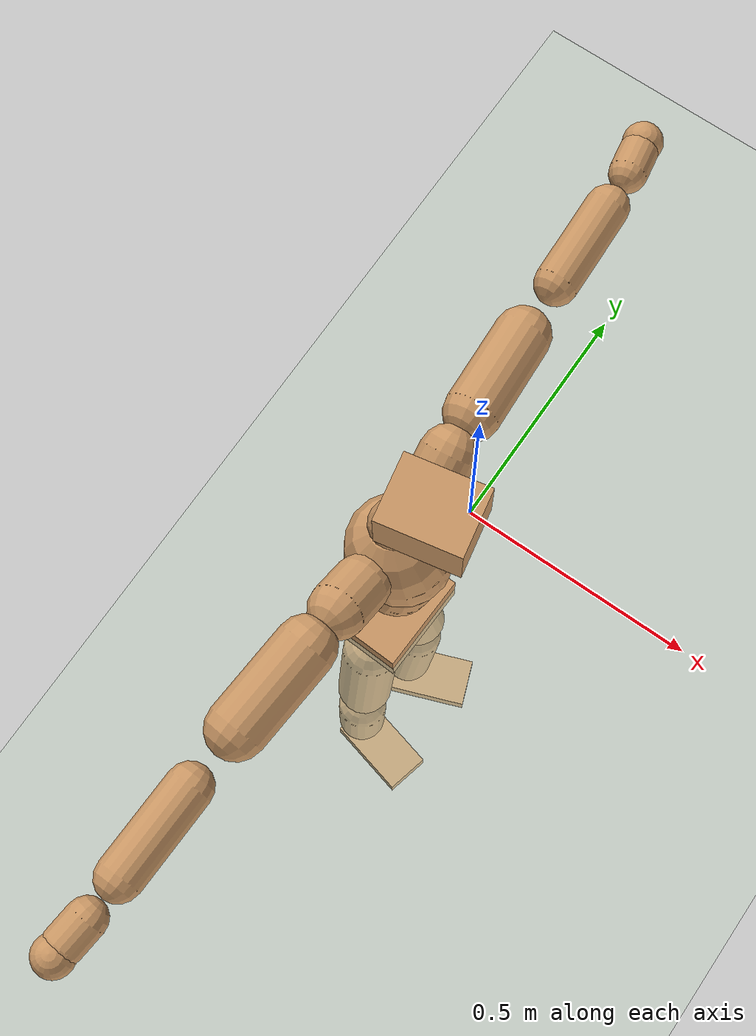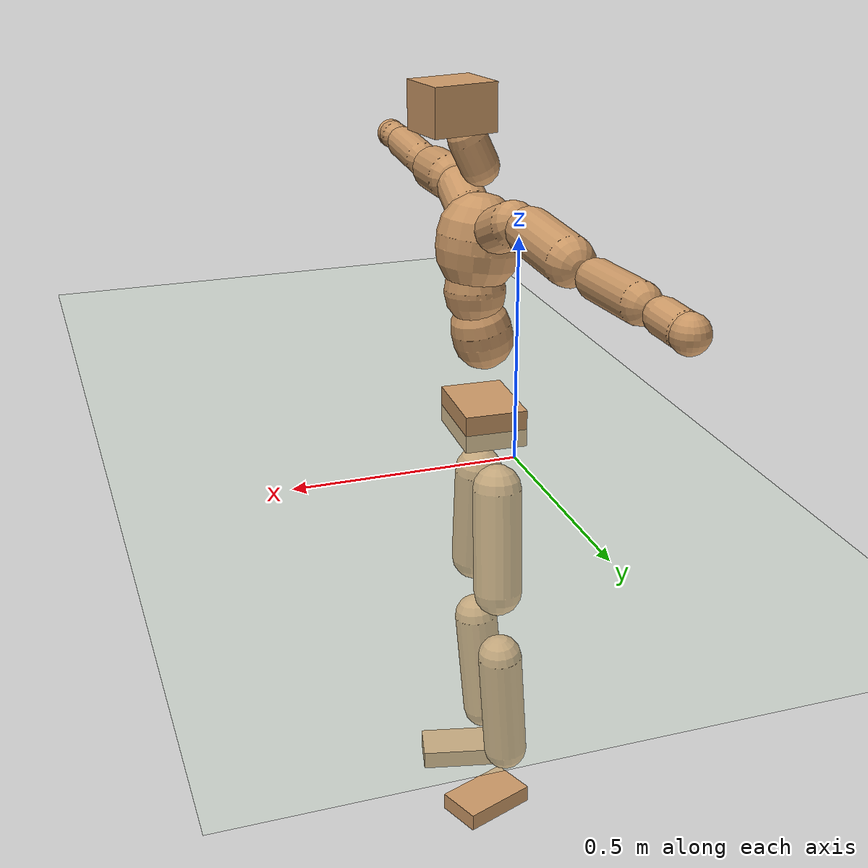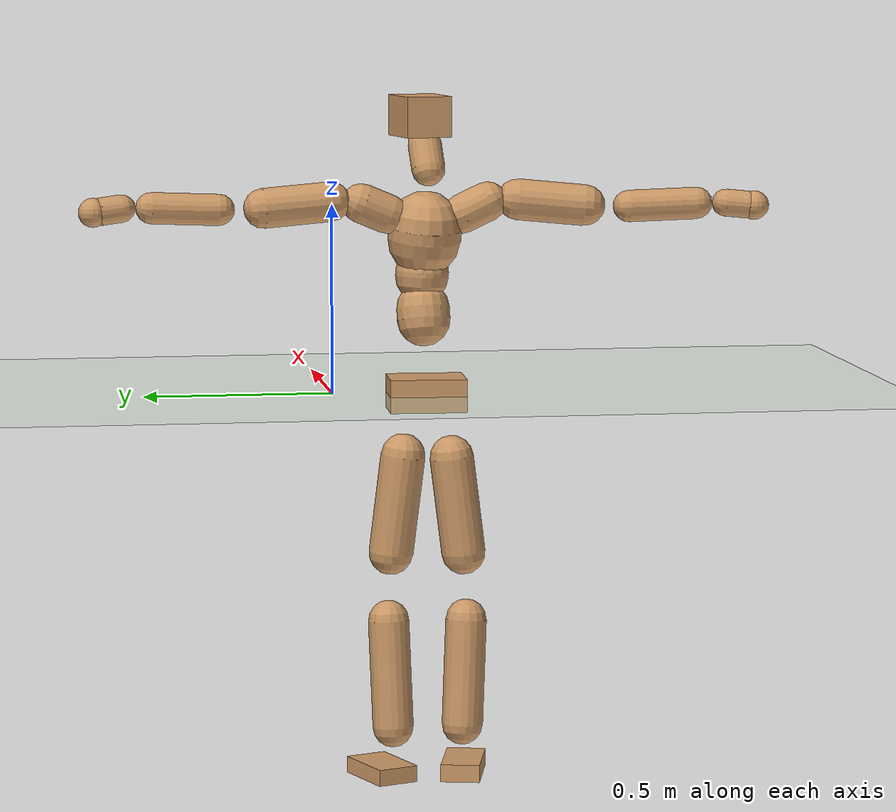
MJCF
<mujoco model="humanoid">
  <compiler coordinate="local" angle="radian"/>
  <default>
    <joint damping="0.0" armature="0.01" stiffness="0.0" limited="true"/>
    <geom conaffinity="1" condim="3" contype="7" margin="0.001" rgba="0.8 0.6 .4 1"/>
  </default>
  <asset>
    <texture type="skybox" builtin="gradient" rgb1=".4 .5 .6" rgb2="0 0 0" width="100" height="100"/>
    <texture builtin="flat" height="1278" mark="cross" markrgb="1 1 1" name="texgeom" random="0.01" rgb1="0.8 0.6 0.4" rgb2="0.8 0.6 0.4" type="cube" width="127"/>
    <texture builtin="checker" height="100" name="texplane" rgb1="0 0 0" rgb2="0.8 0.8 0.8" type="2d" width="100"/>
    <material name="MatPlane" reflectance="0.5" shininess="1" specular="1" texrepeat="60 60" texture="texplane"/>
    <material name="geom" texture="texgeom" texuniform="true"/>
  </asset>
  <worldbody>
    <light cutoff="100" diffuse="1 1 1" dir="-0 0 -1.3" directional="true" exponent="1" pos="0 0 1.3" specular=".1 .1 .1"/>
    <geom conaffinity="1" condim="3" name="floor" pos="0 0 0" rgba="0.8 0.9 0.8 1" size="100 100 .2" type="plane" material="MatPlane"/>
    <body name="Pelvis" pos="-0.0022 -0.2471 0.0086">
      <freejoint name="Pelvis"/>
      <geom type="box" contype="1" conaffinity="1" density="500" pos="-0.0128 0.0005 -0.0091" size="0.0737 0.1015 0.044" quat="0.9998 0.0000 0.0000 -0.0203" name="Pelvis"/>
      <body name="L_Hip" pos="-0.028 0.0541 -0.0863">
        <joint name="L_Hip_x" type="hinge" pos="0 0 0" axis="1 0 0" stiffness="800" damping="80" armature="0.02" range="-180.0000 180.0000"/>
        <joint name="L_Hip_y" type="hinge" pos="0 0 0" axis="0 1 0" stiffness="800" damping="80" armature="0.02" range="-180.0000 180.0000"/>
        <joint name="L_Hip_z" type="hinge" pos="0 0 0" axis="0 0 1" stiffness="800" damping="80" armature="0.02" range="-180.0000 180.0000"/>
        <geom type="capsule" contype="1" conaffinity="1" density="500" fromto="0.0023 0.0104 -0.0873 0.0091 0.0418 -0.3490" size="0.059" name="L_Hip"/>
        <body name="L_Knee" pos="0.0113 0.0522 -0.4363">
          <joint name="L_Knee_x" type="hinge" pos="0 0 0" axis="1 0 0" stiffness="800" damping="80" armature="0.02" range="-180.0000 180.0000"/>
          <joint name="L_Knee_y" type="hinge" pos="0 0 0" axis="0 1 0" stiffness="800" damping="80" armature="0.02" range="-180.0000 180.0000"/>
          <joint name="L_Knee_z" type="hinge" pos="0 0 0" axis="0 0 1" stiffness="800" damping="80" armature="0.02" range="-180.0000 180.0000"/>
          <geom type="capsule" contype="1" conaffinity="1" density="500" fromto="-0.0072 -0.0029 -0.0953 -0.0289 -0.0117 -0.3812" size="0.0543" name="L_Knee"/>
          <body name="L_Ankle" pos="-0.0362 -0.0146 -0.4765">
            <joint name="L_Ankle_x" type="hinge" pos="0 0 0" axis="1 0 0" stiffness="800" damping="80" armature="0.02" range="-180.0000 180.0000"/>
            <joint name="L_Ankle_y" type="hinge" pos="0 0 0" axis="0 1 0" stiffness="800" damping="80" armature="0.02" range="-180.0000 180.0000"/>
            <joint name="L_Ankle_z" type="hinge" pos="0 0 0" axis="0 0 1" stiffness="800" damping="80" armature="0.02" range="-180.0000 180.0000"/>
            <geom type="box" contype="1" conaffinity="1" density="500" pos="0.0660 0.0250 -0.0337" size="0.0929 0.0568 0.022" quat="0.9837 0.0000 0.0000 0.1799" name="L_Ankle"/>
            <body name="L_Toe" pos="0.132 0.05 -0.0674">
              <joint name="L_Toe_x" type="hinge" pos="0 0 0" axis="1 0 0" stiffness="500" damping="50" armature="0.02" range="-180.0000 180.0000"/>
              <joint name="L_Toe_y" type="hinge" pos="0 0 0" axis="0 1 0" stiffness="500" damping="50" armature="0.02" range="-180.0000 180.0000"/>
              <joint name="L_Toe_z" type="hinge" pos="0 0 0" axis="0 0 1" stiffness="500" damping="50" armature="0.02" range="-180.0000 180.0000"/>
              <geom type="box" contype="1" conaffinity="1" density="500" pos="0.0000 0.0000 0.0353" size="0.0011 0.0027 0.0012" quat="0.9829 0.0000 0.0000 0.1839" name="L_Toe"/>
            </body>
          </body>
        </body>
      </body>
      <body name="R_Hip" pos="-0.026 -0.0554 -0.0947">
        <joint name="R_Hip_x" type="hinge" pos="0 0 0" axis="1 0 0" stiffness="800" damping="80" armature="0.02" range="-180.0000 180.0000"/>
        <joint name="R_Hip_y" type="hinge" pos="0 0 0" axis="0 1 0" stiffness="800" damping="80" armature="0.02" range="-180.0000 180.0000"/>
        <joint name="R_Hip_z" type="hinge" pos="0 0 0" axis="0 0 1" stiffness="800" damping="80" armature="0.02" range="-180.0000 180.0000"/>
        <geom type="capsule" contype="1" conaffinity="1" density="500" fromto="-0.0005 -0.0106 -0.0859 -0.0022 -0.0423 -0.3437" size="0.0582" name="R_Hip"/>
        <body name="R_Knee" pos="-0.0027 -0.0529 -0.4297">
          <joint name="R_Knee_x" type="hinge" pos="0 0 0" axis="1 0 0" stiffness="800" damping="80" armature="0.02" range="-180.0000 180.0000"/>
          <joint name="R_Knee_y" type="hinge" pos="0 0 0" axis="0 1 0" stiffness="800" damping="80" armature="0.02" range="-180.0000 180.0000"/>
          <joint name="R_Knee_z" type="hinge" pos="0 0 0" axis="0 0 1" stiffness="800" damping="80" armature="0.02" range="-180.0000 180.0000"/>
          <geom type="capsule" contype="1" conaffinity="1" density="500" fromto="-0.0066 0.0043 -0.0939 -0.0265 0.0172 -0.3757" size="0.0546" name="R_Knee"/>
          <body name="R_Ankle" pos="-0.0331 0.0216 -0.4697">
            <joint name="R_Ankle_x" type="hinge" pos="0 0 0" axis="1 0 0" stiffness="800" damping="80" armature="0.02" range="-180.0000 180.0000"/>
            <joint name="R_Ankle_y" type="hinge" pos="0 0 0" axis="0 1 0" stiffness="800" damping="80" armature="0.02" range="-180.0000 180.0000"/>
            <joint name="R_Ankle_z" type="hinge" pos="0 0 0" axis="0 0 1" stiffness="800" damping="80" armature="0.02" range="-180.0000 180.0000"/>
            <geom type="box" contype="1" conaffinity="1" density="500" pos="0.0717 -0.0174 -0.0351" size="0.0995 0.0521 0.0236" quat="0.9929 0.0000 0.0000 -0.1190" name="R_Ankle"/>
            <body name="R_Toe" pos="0.1434 -0.0349 -0.0702">
              <joint name="R_Toe_x" type="hinge" pos="0 0 0" axis="1 0 0" stiffness="500" damping="50" armature="0.02" range="-180.0000 180.0000"/>
              <joint name="R_Toe_y" type="hinge" pos="0 0 0" axis="0 1 0" stiffness="500" damping="50" armature="0.02" range="-180.0000 180.0000"/>
              <joint name="R_Toe_z" type="hinge" pos="0 0 0" axis="0 0 1" stiffness="500" damping="50" armature="0.02" range="-180.0000 180.0000"/>
              <geom type="box" contype="1" conaffinity="1" density="500" pos="0.0000 0.0000 0.0373" size="0.001 0.0025 0.0013" quat="0.9938 0.0000 0.0000 -0.1110" name="R_Toe"/>
            </body>
          </body>
        </body>
      </body>
      <body name="Torso" pos="-0.0226 0.0044 0.1266">
        <joint name="Torso_x" type="hinge" pos="0 0 0" axis="1 0 0" stiffness="1000" damping="100" armature="0.02" range="-180.0000 180.0000"/>
        <joint name="Torso_y" type="hinge" pos="0 0 0" axis="0 1 0" stiffness="1000" damping="100" armature="0.02" range="-180.0000 180.0000"/>
        <joint name="Torso_z" type="hinge" pos="0 0 0" axis="0 0 1" stiffness="1000" damping="100" armature="0.02" range="-180.0000 180.0000"/>
        <geom type="capsule" contype="1" conaffinity="1" density="500" fromto="0.0208 0.0028 0.0891 0.0139 0.0019 0.0594" size="0.0703" name="Torso"/>
        <body name="Spine" pos="0.0347 0.0047 0.1485">
          <joint name="Spine_x" type="hinge" pos="0 0 0" axis="1 0 0" stiffness="1000" damping="100" armature="0.02" range="-180.0000 180.0000"/>
          <joint name="Spine_y" type="hinge" pos="0 0 0" axis="0 1 0" stiffness="1000" damping="100" armature="0.02" range="-180.0000 180.0000"/>
          <joint name="Spine_z" type="hinge" pos="0 0 0" axis="0 0 1" stiffness="1000" damping="100" armature="0.02" range="-180.0000 180.0000"/>
          <geom type="capsule" contype="1" conaffinity="1" density="500" fromto="0.0007 -0.0016 0.0366 0.0005 -0.0010 0.0244" size="0.0706" name="Spine"/>
          <body name="Chest" pos="0.0011 -0.0026 0.0609">
            <joint name="Chest_x" type="hinge" pos="0 0 0" axis="1 0 0" stiffness="1000" damping="100" armature="0.02" range="-180.0000 180.0000"/>
            <joint name="Chest_y" type="hinge" pos="0 0 0" axis="0 1 0" stiffness="1000" damping="100" armature="0.02" range="-180.0000 180.0000"/>
            <joint name="Chest_z" type="hinge" pos="0 0 0" axis="0 0 1" stiffness="1000" damping="100" armature="0.02" range="-180.0000 180.0000"/>
            <geom type="capsule" contype="1" conaffinity="1" density="500" fromto="-0.0129 -0.0052 0.0930 -0.0086 -0.0035 0.0620" size="0.097" name="Chest"/>
            <body name="Neck" pos="-0.0256 -0.0151 0.2265">
              <joint name="Neck_x" type="hinge" pos="0 0 0" axis="1 0 0" stiffness="500" damping="50" armature="0.02" range="-180.0000 180.0000"/>
              <joint name="Neck_y" type="hinge" pos="0 0 0" axis="0 1 0" stiffness="500" damping="50" armature="0.02" range="-180.0000 180.0000"/>
              <joint name="Neck_z" type="hinge" pos="0 0 0" axis="0 0 1" stiffness="500" damping="50" armature="0.02" range="-180.0000 180.0000"/>
              <geom type="capsule" contype="1" conaffinity="1" density="500" fromto="0.0102 0.0017 0.0208 0.0407 0.0067 0.0831" size="0.0446" name="Neck"/>
              <body name="Head" pos="0.0509 0.0083 0.1039">
                <joint name="Head_x" type="hinge" pos="0 0 0" axis="1 0 0" stiffness="500" damping="50" armature="0.02" range="-180.0000 180.0000"/>
                <joint name="Head_y" type="hinge" pos="0 0 0" axis="0 1 0" stiffness="500" damping="50" armature="0.02" range="-180.0000 180.0000"/>
                <joint name="Head_z" type="hinge" pos="0 0 0" axis="0 0 1" stiffness="500" damping="50" armature="0.02" range="-180.0000 180.0000"/>
                <geom type="box" contype="1" conaffinity="1" density="500" pos="0.0265 0.0052 0.0529" size="0.0762 0.0615 0.0536" quat="0.9954 0.0000 0.0000 0.0962" name="Head"/>
              </body>
            </body>
            <body name="L_Thorax" pos="-0.0175 0.0704 0.1201">
              <joint name="L_Thorax_x" type="hinge" pos="0 0 0" axis="1 0 0" stiffness="500" damping="50" armature="0.02" range="-180.0000 180.0000"/>
              <joint name="L_Thorax_y" type="hinge" pos="0 0 0" axis="0 1 0" stiffness="500" damping="50" armature="0.02" range="-180.0000 180.0000"/>
              <joint name="L_Thorax_z" type="hinge" pos="0 0 0" axis="0 0 1" stiffness="500" damping="50" armature="0.02" range="-180.0000 180.0000"/>
              <geom type="capsule" contype="1" conaffinity="1" density="500" fromto="-0.0024 0.0238 0.0102 -0.0096 0.0952 0.0406" size="0.052" name="L_Thorax"/>
              <body name="L_Shoulder" pos="-0.0119 0.1191 0.0508">
                <joint name="L_Shoulder_x" type="hinge" pos="0 0 0" axis="1 0 0" stiffness="500" damping="50" armature="0.02" range="-720.0000 720.0000"/>
                <joint name="L_Shoulder_y" type="hinge" pos="0 0 0" axis="0 1 0" stiffness="500" damping="50" armature="0.02" range="-720.0000 720.0000"/>
                <joint name="L_Shoulder_z" type="hinge" pos="0 0 0" axis="0 0 1" stiffness="500" damping="50" armature="0.02" range="-720.0000 720.0000"/>
                <geom type="capsule" contype="1" conaffinity="1" density="500" fromto="-0.0039 0.0589 -0.0047 -0.0155 0.2354 -0.0188" size="0.0529" name="L_Shoulder"/>
                <body name="L_Elbow" pos="-0.0193 0.2943 -0.0235">
                  <joint name="L_Elbow_x" type="hinge" pos="0 0 0" axis="1 0 0" stiffness="500" damping="50" armature="0.02" range="-720.0000 720.0000"/>
                  <joint name="L_Elbow_y" type="hinge" pos="0 0 0" axis="0 1 0" stiffness="500" damping="50" armature="0.02" range="-720.0000 720.0000"/>
                  <joint name="L_Elbow_z" type="hinge" pos="0 0 0" axis="0 0 1" stiffness="500" damping="50" armature="0.02" range="-720.0000 720.0000"/>
                  <geom type="capsule" contype="1" conaffinity="1" density="500" fromto="-0.0019 0.0586 0.0024 -0.0077 0.2345 0.0097" size="0.0413" name="L_Elbow"/>
                  <body name="L_Wrist" pos="-0.0096 0.2932 0.0122">
                    <joint name="L_Wrist_x" type="hinge" pos="0 0 0" axis="1 0 0" stiffness="300" damping="30" armature="0.02" range="-180.0000 180.0000"/>
                    <joint name="L_Wrist_y" type="hinge" pos="0 0 0" axis="0 1 0" stiffness="300" damping="30" armature="0.02" range="-180.0000 180.0000"/>
                    <joint name="L_Wrist_z" type="hinge" pos="0 0 0" axis="0 0 1" stiffness="300" damping="30" armature="0.02" range="-180.0000 180.0000"/>
                    <geom type="capsule" contype="1" conaffinity="1" density="500" fromto="-0.0035 0.0187 -0.0022 -0.0139 0.0748 -0.0088" size="0.036" name="L_Wrist"/>
                    <body name="L_Hand" pos="-0.0174 0.0935 -0.011">
                      <joint name="L_Hand_x" type="hinge" pos="0 0 0" axis="1 0 0" stiffness="300" damping="30" armature="0.02" range="-180.0000 180.0000"/>
                      <joint name="L_Hand_y" type="hinge" pos="0 0 0" axis="0 1 0" stiffness="300" damping="30" armature="0.02" range="-180.0000 180.0000"/>
                      <joint name="L_Hand_z" type="hinge" pos="0 0 0" axis="0 0 1" stiffness="300" damping="30" armature="0.02" range="-180.0000 180.0000"/>
                      <geom type="sphere" contype="1" conaffinity="1" density="500" size="0.0381" pos="0.0000 0.0000 0.0000" name="L_Hand"/>
                    </body>
                  </body>
                </body>
              </body>
            </body>
            <body name="R_Thorax" pos="-0.0214 -0.0813 0.1186">
              <joint name="R_Thorax_x" type="hinge" pos="0 0 0" axis="1 0 0" stiffness="500" damping="50" armature="0.02" range="-180.0000 180.0000"/>
              <joint name="R_Thorax_y" type="hinge" pos="0 0 0" axis="0 1 0" stiffness="500" damping="50" armature="0.02" range="-180.0000 180.0000"/>
              <joint name="R_Thorax_z" type="hinge" pos="0 0 0" axis="0 0 1" stiffness="500" damping="50" armature="0.02" range="-180.0000 180.0000"/>
              <geom type="capsule" contype="1" conaffinity="1" density="500" fromto="-0.0003 -0.0221 0.0106 -0.0013 -0.0883 0.0423" size="0.0525" name="R_Thorax"/>
              <body name="R_Shoulder" pos="-0.0016 -0.1104 0.0529">
                <joint name="R_Shoulder_x" type="hinge" pos="0 0 0" axis="1 0 0" stiffness="500" damping="50" armature="0.02" range="-720.0000 720.0000"/>
                <joint name="R_Shoulder_y" type="hinge" pos="0 0 0" axis="0 1 0" stiffness="500" damping="50" armature="0.02" range="-720.0000 720.0000"/>
                <joint name="R_Shoulder_z" type="hinge" pos="0 0 0" axis="0 0 1" stiffness="500" damping="50" armature="0.02" range="-720.0000 720.0000"/>
                <geom type="capsule" contype="1" conaffinity="1" density="500" fromto="-0.0054 -0.0585 -0.0054 -0.0216 -0.2341 -0.0216" size="0.0548" name="R_Shoulder"/>
                <body name="R_Elbow" pos="-0.027 -0.2926 -0.027">
                  <joint name="R_Elbow_x" type="hinge" pos="0 0 0" axis="1 0 0" stiffness="500" damping="50" armature="0.02" range="-720.0000 720.0000"/>
                  <joint name="R_Elbow_y" type="hinge" pos="0 0 0" axis="0 1 0" stiffness="500" damping="50" armature="0.02" range="-720.0000 720.0000"/>
                  <joint name="R_Elbow_z" type="hinge" pos="0 0 0" axis="0 0 1" stiffness="500" damping="50" armature="0.02" range="-720.0000 720.0000"/>
                  <geom type="capsule" contype="1" conaffinity="1" density="500" fromto="-0.0015 -0.0602 0.0021 -0.0059 -0.2408 0.0083" size="0.0423" name="R_Elbow"/>
                  <body name="R_Wrist" pos="-0.0074 -0.301 0.0104">
                    <joint name="R_Wrist_x" type="hinge" pos="0 0 0" axis="1 0 0" stiffness="300" damping="30" armature="0.02" range="-180.0000 180.0000"/>
                    <joint name="R_Wrist_y" type="hinge" pos="0 0 0" axis="0 1 0" stiffness="300" damping="30" armature="0.02" range="-180.0000 180.0000"/>
                    <joint name="R_Wrist_z" type="hinge" pos="0 0 0" axis="0 0 1" stiffness="300" damping="30" armature="0.02" range="-180.0000 180.0000"/>
                    <geom type="capsule" contype="1" conaffinity="1" density="500" fromto="-0.0022 -0.0190 -0.0018 -0.0089 -0.0759 -0.0071" size="0.0364" name="R_Wrist"/>
                    <body name="R_Hand" pos="-0.0111 -0.0948 -0.0088">
                      <joint name="R_Hand_x" type="hinge" pos="0 0 0" axis="1 0 0" stiffness="300" damping="30" armature="0.02" range="-180.0000 180.0000"/>
                      <joint name="R_Hand_y" type="hinge" pos="0 0 0" axis="0 1 0" stiffness="300" damping="30" armature="0.02" range="-180.0000 180.0000"/>
                      <joint name="R_Hand_z" type="hinge" pos="0 0 0" axis="0 0 1" stiffness="300" damping="30" armature="0.02" range="-180.0000 180.0000"/>
                      <geom type="sphere" contype="1" conaffinity="1" density="500" size="0.0383" pos="0.0000 0.0000 0.0000" name="R_Hand"/>
                    </body>
                  </body>
                </body>
              </body>
            </body>
          </body>
        </body>
      </body>
    </body>
  </worldbody>
  <actuator>
    <motor name="L_Hip_x" joint="L_Hip_x" gear="500"/>
    <motor name="L_Hip_y" joint="L_Hip_y" gear="500"/>
    <motor name="L_Hip_z" joint="L_Hip_z" gear="500"/>
    <motor name="L_Knee_x" joint="L_Knee_x" gear="500"/>
    <motor name="L_Knee_y" joint="L_Knee_y" gear="500"/>
    <motor name="L_Knee_z" joint="L_Knee_z" gear="500"/>
    <motor name="L_Ankle_x" joint="L_Ankle_x" gear="500"/>
    <motor name="L_Ankle_y" joint="L_Ankle_y" gear="500"/>
    <motor name="L_Ankle_z" joint="L_Ankle_z" gear="500"/>
    <motor name="L_Toe_x" joint="L_Toe_x" gear="500"/>
    <motor name="L_Toe_y" joint="L_Toe_y" gear="500"/>
    <motor name="L_Toe_z" joint="L_Toe_z" gear="500"/>
    <motor name="R_Hip_x" joint="R_Hip_x" gear="500"/>
    <motor name="R_Hip_y" joint="R_Hip_y" gear="500"/>
    <motor name="R_Hip_z" joint="R_Hip_z" gear="500"/>
    <motor name="R_Knee_x" joint="R_Knee_x" gear="500"/>
    <motor name="R_Knee_y" joint="R_Knee_y" gear="500"/>
    <motor name="R_Knee_z" joint="R_Knee_z" gear="500"/>
    <motor name="R_Ankle_x" joint="R_Ankle_x" gear="500"/>
    <motor name="R_Ankle_y" joint="R_Ankle_y" gear="500"/>
    <motor name="R_Ankle_z" joint="R_Ankle_z" gear="500"/>
    <motor name="R_Toe_x" joint="R_Toe_x" gear="500"/>
    <motor name="R_Toe_y" joint="R_Toe_y" gear="500"/>
    <motor name="R_Toe_z" joint="R_Toe_z" gear="500"/>
    <motor name="Torso_x" joint="Torso_x" gear="500"/>
    <motor name="Torso_y" joint="Torso_y" gear="500"/>
    <motor name="Torso_z" joint="Torso_z" gear="500"/>
    <motor name="Spine_x" joint="Spine_x" gear="500"/>
    <motor name="Spine_y" joint="Spine_y" gear="500"/>
    <motor name="Spine_z" joint="Spine_z" gear="500"/>
    <motor name="Chest_x" joint="Chest_x" gear="500"/>
    <motor name="Chest_y" joint="Chest_y" gear="500"/>
    <motor name="Chest_z" joint="Chest_z" gear="500"/>
    <motor name="Neck_x" joint="Neck_x" gear="500"/>
    <motor name="Neck_y" joint="Neck_y" gear="500"/>
    <motor name="Neck_z" joint="Neck_z" gear="500"/>
    <motor name="Head_x" joint="Head_x" gear="500"/>
    <motor name="Head_y" joint="Head_y" gear="500"/>
    <motor name="Head_z" joint="Head_z" gear="500"/>
    <motor name="L_Thorax_x" joint="L_Thorax_x" gear="500"/>
    <motor name="L_Thorax_y" joint="L_Thorax_y" gear="500"/>
    <motor name="L_Thorax_z" joint="L_Thorax_z" gear="500"/>
    <motor name="L_Shoulder_x" joint="L_Shoulder_x" gear="500"/>
    <motor name="L_Shoulder_y" joint="L_Shoulder_y" gear="500"/>
    <motor name="L_Shoulder_z" joint="L_Shoulder_z" gear="500"/>
    <motor name="L_Elbow_x" joint="L_Elbow_x" gear="500"/>
    <motor name="L_Elbow_y" joint="L_Elbow_y" gear="500"/>
    <motor name="L_Elbow_z" joint="L_Elbow_z" gear="500"/>
    <motor name="L_Wrist_x" joint="L_Wrist_x" gear="500"/>
    <motor name="L_Wrist_y" joint="L_Wrist_y" gear="500"/>
    <motor name="L_Wrist_z" joint="L_Wrist_z" gear="500"/>
    <motor name="L_Hand_x" joint="L_Hand_x" gear="500"/>
    <motor name="L_Hand_y" joint="L_Hand_y" gear="500"/>
    <motor name="L_Hand_z" joint="L_Hand_z" gear="500"/>
    <motor name="R_Thorax_x" joint="R_Thorax_x" gear="500"/>
    <motor name="R_Thorax_y" joint="R_Thorax_y" gear="500"/>
    <motor name="R_Thorax_z" joint="R_Thorax_z" gear="500"/>
    <motor name="R_Shoulder_x" joint="R_Shoulder_x" gear="500"/>
    <motor name="R_Shoulder_y" joint="R_Shoulder_y" gear="500"/>
    <motor name="R_Shoulder_z" joint="R_Shoulder_z" gear="500"/>
    <motor name="R_Elbow_x" joint="R_Elbow_x" gear="500"/>
    <motor name="R_Elbow_y" joint="R_Elbow_y" gear="500"/>
    <motor name="R_Elbow_z" joint="R_Elbow_z" gear="500"/>
    <motor name="R_Wrist_x" joint="R_Wrist_x" gear="500"/>
    <motor name="R_Wrist_y" joint="R_Wrist_y" gear="500"/>
    <motor name="R_Wrist_z" joint="R_Wrist_z" gear="500"/>
    <motor name="R_Hand_x" joint="R_Hand_x" gear="500"/>
    <motor name="R_Hand_y" joint="R_Hand_y" gear="500"/>
    <motor name="R_Hand_z" joint="R_Hand_z" gear="500"/>
  </actuator>
  <contact>
    <exclude body1="Torso" body2="Chest"/>
    <exclude body1="Head" body2="Chest"/>
    <exclude body1="R_Knee" body2="R_Toe"/>
    <exclude body1="R_Knee" body2="L_Ankle"/>
    <exclude body1="R_Knee" body2="L_Toe"/>
    <exclude body1="L_Knee" body2="L_Toe"/>
    <exclude body1="L_Knee" body2="R_Ankle"/>
    <exclude body1="L_Knee" body2="R_Toe"/>
    <exclude body1="L_Shoulder" body2="Chest"/>
    <exclude body1="R_Shoulder" body2="Chest"/>
  </contact>
  <sensor/>
  <size njmax="700" nconmax="700"/>
</mujoco>
